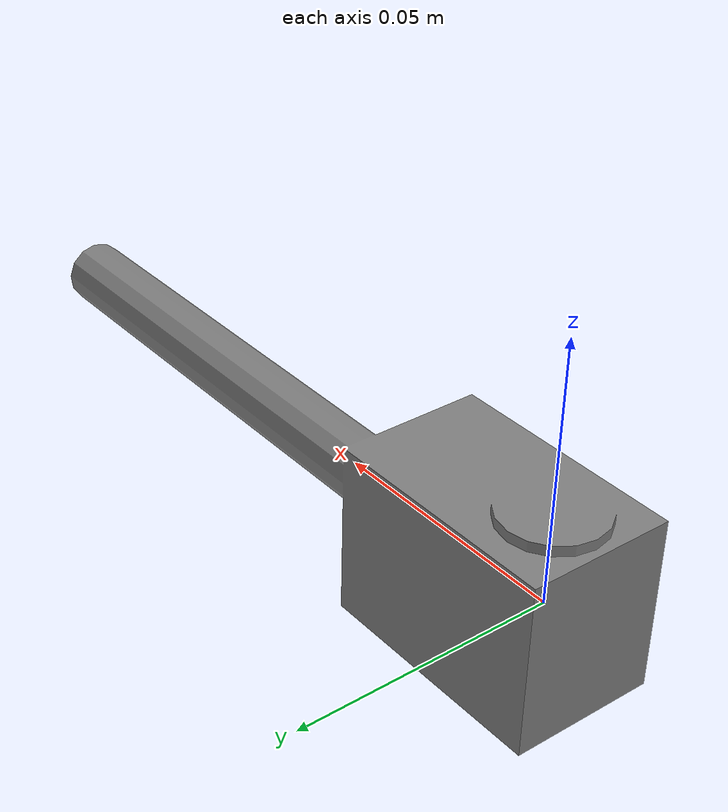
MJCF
<mujoco model="test_STL's">
  <!-- Compiler options -->
  <compiler angle="radian"/>

  <!-- Default settings -->
  <default>
    <joint damping="1"/>
    <geom type="mesh" contype="1" conaffinity="1" condim="3" friction="1 0.5 0.5"
          solimp="0.9 0.95 0.001" solref="0.02 1"/>
  </default>

  <!-- Option settings -->
  <option timestep="0.002" gravity="0 0 -9.81" iterations="50" integrator="RK4"/>

  <!-- Asset definitions -->
  <asset>
    <!-- Define the mesh for shoulder_roll_r -->
    <mesh name="shoulder_roll_r_mesh" file="../../urdf/BRUCE_OG_urdf/meshes/elbow_pitch_r.STL"/>
  </asset>

  <!-- World body -->
  <worldbody>
    <body name="shoulder_roll_r_body" pos="0 0 0">
      <!-- Geometry using the mesh -->
      <geom name="shoulder_roll_r_geom" mesh="shoulder_roll_r_mesh"/>
    </body>
  </worldbody>
</mujoco>
